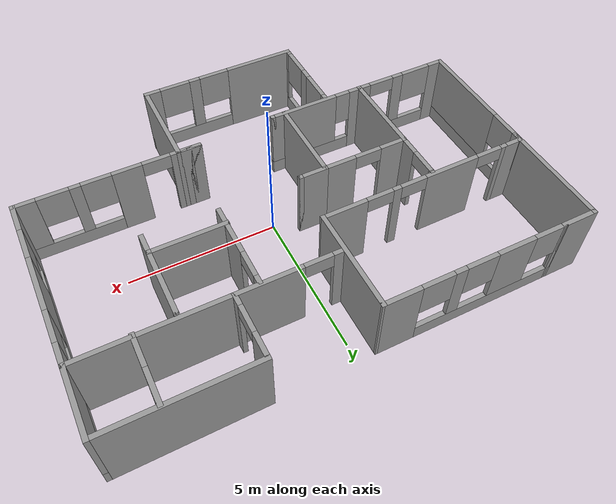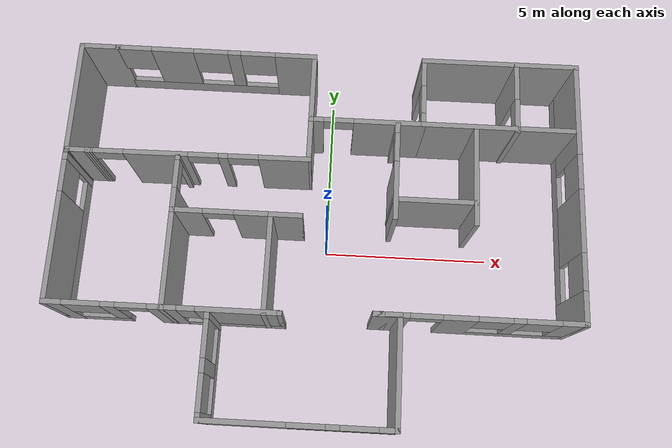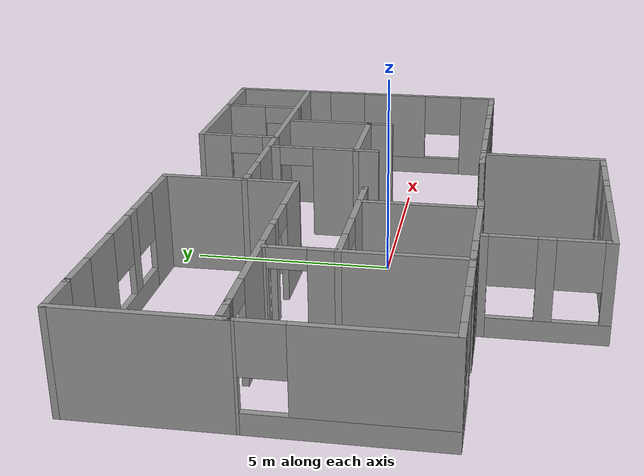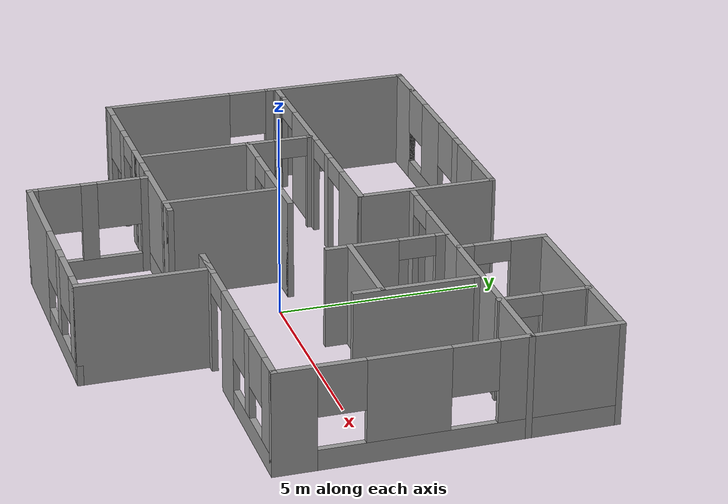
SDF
<sdf version="1.7">
 <model name="Floorplan1">
  <pose>-0.249634 0.128796 0 0 -0 0</pose>
  <link name="Wall_0">
   <collision name="Wall_0_Collision">
    <geometry><box><size>1.25 0.15 2.5</size></box></geometry>
    <pose>0 0 1.25 0 -0 0</pose>
   </collision>
   <visual name="Wall_0_Visual">
    <pose>0 0 1.25 0 -0 0</pose>
    <geometry><box><size>1.25 0.15 2.5</size></box></geometry>
    <material>
     <script><uri>file://media/materials/scripts/gazebo.material</uri><name>Gazebo/Grey</name></script>
     <ambient>1 1 1 1</ambient>
    </material>
    <meta><layer>0</layer></meta>
   </visual>
   <pose>-6.99818 5.45219 0 0 -0 3.14159</pose>
  </link>
  <link name="Wall_1">
   <collision name="Wall_1_Collision">
    <geometry><box><size>3.75 0.15 2.5</size></box></geometry>
    <pose>0 0 1.25 0 -0 0</pose>
   </collision>
   <visual name="Wall_1_Visual">
    <pose>0 0 1.25 0 -0 0</pose>
    <geometry><box><size>3.75 0.15 2.5</size></box></geometry>
    <material>
     <script><uri>file://media/materials/scripts/gazebo.material</uri><name>Gazebo/Grey</name></script>
     <ambient>1 1 1 1</ambient>
    </material>
    <meta><layer>0</layer></meta>
   </visual>
   <pose>-7.54818 3.65219 0 0 -0 -1.5708</pose>
  </link>
  <link name="Wall_10">
   <collision name="Wall_10_Collision">
    <geometry><box><size>0.15 0.15 2.5</size></box></geometry>
    <pose>0 0 1.25 0 -0 0</pose>
   </collision>
   <visual name="Wall_10_Visual">
    <pose>0 0 1.25 0 -0 0</pose>
    <geometry><box><size>0.15 0.15 2.5</size></box></geometry>
    <material>
     <script><uri>file://media/materials/scripts/gazebo.material</uri><name>Gazebo/Grey</name></script>
     <ambient>1 1 1 1</ambient>
    </material>
    <meta><layer>0</layer></meta>
   </visual>
   <pose>-6.44818 5.45219 0 0 -0 0</pose>
  </link>
  <link name="Wall_12">
   <collision name="Wall_12_Collision">
    <geometry><box><size>0.15 0.15 2.5</size></box></geometry>
    <pose>0 0 1.25 0 -0 0</pose>
   </collision>
   <visual name="Wall_12_Visual">
    <pose>0 0 1.25 0 -0 0</pose>
    <geometry><box><size>0.15 0.15 2.5</size></box></geometry>
    <material>
     <script><uri>file://media/materials/scripts/gazebo.material</uri><name>Gazebo/Grey</name></script>
     <ambient>1 1 1 1</ambient>
    </material>
    <meta><layer>0</layer></meta>
   </visual>
   <pose>-7.52398 2.04006 0 0 -0 0</pose>
  </link>
  <link name="Wall_14">
   <collision name="Wall_14_Collision">
    <geometry><box><size>0.15 0.15 2.5</size></box></geometry>
    <pose>0 0 1.25 0 -0 0</pose>
   </collision>
   <visual name="Wall_14_Visual">
    <pose>0 0 1.25 0 -0 0</pose>
    <geometry><box><size>0.15 0.15 2.5</size></box></geometry>
    <material>
     <script><uri>file://media/materials/scripts/gazebo.material</uri><name>Gazebo/Grey</name></script>
     <ambient>1 1 1 1</ambient>
    </material>
    <meta><layer>0</layer></meta>
   </visual>
   <pose>-7.52398 2.04006 0 0 -0 0</pose>
  </link>
  <link name="Wall_16">
   <collision name="Wall_16_Collision">
    <geometry><box><size>0.15 0.15 2.5</size></box></geometry>
    <pose>0 0 1.25 0 -0 0</pose>
   </collision>
   <visual name="Wall_16_Visual">
    <pose>0 0 1.25 0 -0 0</pose>
    <geometry><box><size>0.15 0.15 2.5</size></box></geometry>
    <material>
     <script><uri>file://media/materials/scripts/gazebo.material</uri><name>Gazebo/Grey</name></script>
     <ambient>1 1 1 1</ambient>
    </material>
    <meta><layer>0</layer></meta>
   </visual>
   <pose>-7.52398 2.04006 0 0 -0 0</pose>
  </link>
  <link name="Wall_18">
   <pose>-7.54818 -0.322811 0 0 -0 -1.5708</pose>
   <visual name="Wall_18_Visual_0">
    <pose>-2.14202 0 1.25 0 -0 0</pose>
    <geometry><box><size>0.215958 0.15 2.5</size></box></geometry>
    <material>
     <script><uri>file://media/materials/scripts/gazebo.material</uri><name>Gazebo/Grey</name></script>
     <ambient>1 1 1 1</ambient>
    </material>
    <meta><layer>0</layer></meta>
   </visual>
   <collision name="Wall_18_Collision_0">
    <geometry><box><size>0.215958 0.15 2.5</size></box></geometry>
    <pose>-2.14202 0 1.25 0 -0 0</pose>
   </collision>
   <visual name="Wall_18_Visual_1">
    <pose>0.107979 0 0.25 0 -0 0</pose>
    <geometry><box><size>4.28404 0.15 0.5</size></box></geometry>
    <material>
     <script><uri>file://media/materials/scripts/gazebo.material</uri><name>Gazebo/Grey</name></script>
     <ambient>1 1 1 1</ambient>
    </material>
    <meta><layer>0</layer></meta>
   </visual>
   <collision name="Wall_18_Collision_1">
    <geometry><box><size>4.28404 0.15 0.5</size></box></geometry>
    <pose>0.107979 0 0.25 0 -0 0</pose>
   </collision>
   <visual name="Wall_18_Visual_2">
    <pose>0.597695 0 1.5 0 -0 0</pose>
    <geometry><box><size>3.30461 0.15 2</size></box></geometry>
    <material>
     <script><uri>file://media/materials/scripts/gazebo.material</uri><name>Gazebo/Grey</name></script>
     <ambient>1 1 1 1</ambient>
    </material>
    <meta><layer>0</layer></meta>
   </visual>
   <collision name="Wall_18_Collision_2">
    <geometry><box><size>3.30461 0.15 2</size></box></geometry>
    <pose>0.597695 0 1.5 0 -0 0</pose>
   </collision>
   <visual name="Wall_18_Visual_3">
    <pose>-1.54433 0 1.9 0 -0 0</pose>
    <geometry><box><size>0.979431 0.15 1.2</size></box></geometry>
    <material>
     <script><uri>file://media/materials/scripts/gazebo.material</uri><name>Gazebo/Grey</name></script>
     <ambient>1 1 1 1</ambient>
    </material>
    <meta><layer>0</layer></meta>
   </visual>
   <collision name="Wall_18_Collision_3">
    <geometry><box><size>0.979431 0.15 1.2</size></box></geometry>
    <pose>-1.54433 0 1.9 0 -0 0</pose>
   </collision>
  </link>
  <link name="Wall_19">
   <pose>-4.24818 -2.49781 0 0 -0 0</pose>
   <visual name="Wall_19_Visual_0">
    <pose>-3.08087 0 1.25 0 -0 0</pose>
    <geometry><box><size>0.58825 0.15 2.5</size></box></geometry>
    <material>
     <script><uri>file://media/materials/scripts/gazebo.material</uri><name>Gazebo/Grey</name></script>
     <ambient>1 1 1 1</ambient>
    </material>
    <meta><layer>0</layer></meta>
   </visual>
   <collision name="Wall_19_Collision_0">
    <geometry><box><size>0.58825 0.15 2.5</size></box></geometry>
    <pose>-3.08087 0 1.25 0 -0 0</pose>
   </collision>
   <visual name="Wall_19_Visual_1">
    <pose>0.015384 0 1.25 0 -0 0</pose>
    <geometry><box><size>0.825338 0.15 2.5</size></box></geometry>
    <material>
     <script><uri>file://media/materials/scripts/gazebo.material</uri><name>Gazebo/Grey</name></script>
     <ambient>1 1 1 1</ambient>
    </material>
    <meta><layer>0</layer></meta>
   </visual>
   <collision name="Wall_19_Collision_1">
    <geometry><box><size>0.825338 0.15 2.5</size></box></geometry>
    <pose>0.015384 0 1.25 0 -0 0</pose>
   </collision>
   <visual name="Wall_19_Visual_2">
    <pose>-2.04202 0 0.25 0 -0 0</pose>
    <geometry><box><size>1.48947 0.15 0.5</size></box></geometry>
    <material>
     <script><uri>file://media/materials/scripts/gazebo.material</uri><name>Gazebo/Grey</name></script>
     <ambient>1 1 1 1</ambient>
    </material>
    <meta><layer>0</layer></meta>
   </visual>
   <collision name="Wall_19_Collision_2">
    <geometry><box><size>1.48947 0.15 0.5</size></box></geometry>
    <pose>-2.04202 0 0.25 0 -0 0</pose>
   </collision>
   <visual name="Wall_19_Visual_3">
    <pose>1.90153 0 0.25 0 -0 0</pose>
    <geometry><box><size>2.94695 0.15 0.5</size></box></geometry>
    <material>
     <script><uri>file://media/materials/scripts/gazebo.material</uri><name>Gazebo/Grey</name></script>
     <ambient>1 1 1 1</ambient>
    </material>
    <meta><layer>0</layer></meta>
   </visual>
   <collision name="Wall_19_Collision_3">
    <geometry><box><size>2.94695 0.15 0.5</size></box></geometry>
    <pose>1.90153 0 0.25 0 -0 0</pose>
   </collision>
   <visual name="Wall_19_Visual_4">
    <pose>-1.49997 0 1.5 0 -0 0</pose>
    <geometry><box><size>0.405366 0.15 2</size></box></geometry>
    <material>
     <script><uri>file://media/materials/scripts/gazebo.material</uri><name>Gazebo/Grey</name></script>
     <ambient>1 1 1 1</ambient>
    </material>
    <meta><layer>0</layer></meta>
   </visual>
   <collision name="Wall_19_Collision_4">
    <geometry><box><size>0.405366 0.15 2</size></box></geometry>
    <pose>-1.49997 0 1.5 0 -0 0</pose>
   </collision>
   <visual name="Wall_19_Visual_5">
    <pose>-1.49997 0 1.5 0 -0 0</pose>
    <geometry><box><size>0.405366 0.15 2</size></box></geometry>
    <material>
     <script><uri>file://media/materials/scripts/gazebo.material</uri><name>Gazebo/Grey</name></script>
     <ambient>1 1 1 1</ambient>
    </material>
    <meta><layer>0</layer></meta>
   </visual>
   <collision name="Wall_19_Collision_5">
    <geometry><box><size>0.405366 0.15 2</size></box></geometry>
    <pose>-1.49997 0 1.5 0 -0 0</pose>
   </collision>
   <visual name="Wall_19_Visual_6">
    <pose>2.15948 0 1.5 0 -0 0</pose>
    <geometry><box><size>2.43105 0.15 2</size></box></geometry>
    <material>
     <script><uri>file://media/materials/scripts/gazebo.material</uri><name>Gazebo/Grey</name></script>
     <ambient>1 1 1 1</ambient>
    </material>
    <meta><layer>0</layer></meta>
   </visual>
   <collision name="Wall_19_Collision_6">
    <geometry><box><size>2.43105 0.15 2</size></box></geometry>
    <pose>2.15948 0 1.5 0 -0 0</pose>
   </collision>
   <visual name="Wall_19_Visual_7">
    <pose>-2.2447 0 1.9 0 -0 0</pose>
    <geometry><box><size>1.0841 0.15 1.2</size></box></geometry>
    <material>
     <script><uri>file://media/materials/scripts/gazebo.material</uri><name>Gazebo/Grey</name></script>
     <ambient>1 1 1 1</ambient>
    </material>
    <meta><layer>0</layer></meta>
   </visual>
   <collision name="Wall_19_Collision_7">
    <geometry><box><size>1.0841 0.15 1.2</size></box></geometry>
    <pose>-2.2447 0 1.9 0 -0 0</pose>
   </collision>
   <visual name="Wall_19_Visual_8">
    <pose>0.686003 0 1.9 0 -0 0</pose>
    <geometry><box><size>0.515901 0.15 1.2</size></box></geometry>
    <material>
     <script><uri>file://media/materials/scripts/gazebo.material</uri><name>Gazebo/Grey</name></script>
     <ambient>1 1 1 1</ambient>
    </material>
    <meta><layer>0</layer></meta>
   </visual>
   <collision name="Wall_19_Collision_8">
    <geometry><box><size>0.515901 0.15 1.2</size></box></geometry>
    <pose>0.686003 0 1.9 0 -0 0</pose>
   </collision>
   <visual name="Wall_19_Visual_9">
    <pose>-0.847285 0 2.25 0 -0 0</pose>
    <geometry><box><size>0.9 0.15 0.5</size></box></geometry>
    <material>
     <script><uri>file://media/materials/scripts/gazebo.material</uri><name>Gazebo/Grey</name></script>
     <ambient>1 1 1 1</ambient>
    </material>
    <meta><layer>0</layer></meta>
   </visual>
   <collision name="Wall_19_Collision_9">
    <geometry><box><size>0.9 0.15 0.5</size></box></geometry>
    <pose>-0.847285 0 2.25 0 -0 0</pose>
   </collision>
   <visual name="Wall_19_Visual_10">
    <pose>-0.847285 0 2.25 0 -0 0</pose>
    <geometry><box><size>0.9 0.15 0.5</size></box></geometry>
    <material>
     <script><uri>file://media/materials/scripts/gazebo.material</uri><name>Gazebo/Grey</name></script>
     <ambient>1 1 1 1</ambient>
    </material>
    <meta><layer>0</layer></meta>
   </visual>
   <collision name="Wall_19_Collision_10">
    <geometry><box><size>0.9 0.15 0.5</size></box></geometry>
    <pose>-0.847285 0 2.25 0 -0 0</pose>
   </collision>
  </link>
  <link name="Wall_2">
   <collision name="Wall_2_Collision">
    <geometry><box><size>0.15 0.15 2.5</size></box></geometry>
    <pose>0 0 1.25 0 -0 0</pose>
   </collision>
   <visual name="Wall_2_Visual">
    <pose>0 0 1.25 0 -0 0</pose>
    <geometry><box><size>0.15 0.15 2.5</size></box></geometry>
    <material>
     <script><uri>file://media/materials/scripts/gazebo.material</uri><name>Gazebo/Grey</name></script>
     <ambient>1 1 1 1</ambient>
    </material>
    <meta><layer>0</layer></meta>
   </visual>
   <pose>-7.54818 1.85219 0 0 -0 0</pose>
  </link>
  <link name="Wall_20">
   <collision name="Wall_20_Collision">
    <geometry><box><size>0.15 0.15 2.5</size></box></geometry>
    <pose>0 0 1.25 0 -0 0</pose>
   </collision>
   <visual name="Wall_20_Visual">
    <pose>0 0 1.25 0 -0 0</pose>
    <geometry><box><size>0.15 0.15 2.5</size></box></geometry>
    <material>
     <script><uri>file://media/materials/scripts/gazebo.material</uri><name>Gazebo/Grey</name></script>
     <ambient>1 1 1 1</ambient>
    </material>
    <meta><layer>0</layer></meta>
   </visual>
   <pose>-0.948184 -2.49781 0 0 -0 0</pose>
  </link>
  <link name="Wall_22">
   <collision name="Wall_22_Collision">
    <geometry><box><size>3 0.15 2.5</size></box></geometry>
    <pose>0 0 1.25 0 -0 0</pose>
   </collision>
   <visual name="Wall_22_Visual">
    <pose>0 0 1.25 0 -0 0</pose>
    <geometry><box><size>3 0.15 2.5</size></box></geometry>
    <material>
     <script><uri>file://media/materials/scripts/gazebo.material</uri><name>Gazebo/Grey</name></script>
     <ambient>1 1 1 1</ambient>
    </material>
    <meta><layer>0</layer></meta>
   </visual>
   <pose>-1.39197 -1.07775 0 0 -0 1.5708</pose>
  </link>
  <link name="Wall_23">
   <collision name="Wall_23_Collision">
    <geometry><box><size>1 0.15 2.5</size></box></geometry>
    <pose>0 0 1.25 0 -0 0</pose>
   </collision>
   <visual name="Wall_23_Visual">
    <pose>0 0 1.25 0 -0 0</pose>
    <geometry><box><size>1 0.15 2.5</size></box></geometry>
    <material>
     <script><uri>file://media/materials/scripts/gazebo.material</uri><name>Gazebo/Grey</name></script>
     <ambient>1 1 1 1</ambient>
    </material>
    <meta><layer>0</layer></meta>
   </visual>
   <pose>-0.966966 0.347251 0 0 -0 0</pose>
  </link>
  <link name="Wall_24">
   <collision name="Wall_24_Collision">
    <geometry><box><size>0.15 0.15 2.5</size></box></geometry>
    <pose>0 0 1.25 0 -0 0</pose>
   </collision>
   <visual name="Wall_24_Visual">
    <pose>0 0 1.25 0 -0 0</pose>
    <geometry><box><size>0.15 0.15 2.5</size></box></geometry>
    <material>
     <script><uri>file://media/materials/scripts/gazebo.material</uri><name>Gazebo/Grey</name></script>
     <ambient>1 1 1 1</ambient>
    </material>
    <meta><layer>0</layer></meta>
   </visual>
   <pose>-0.541966 0.347251 0 0 -0 0</pose>
  </link>
  <link name="Wall_26">
   <pose>-2.81697 0.347251 0 0 -0 3.14159</pose>
   <visual name="Wall_26_Visual_0">
    <pose>-0.92766 0 1.25 0 -0 0</pose>
    <geometry><box><size>1.14468 0.15 2.5</size></box></geometry>
    <material>
     <script><uri>file://media/materials/scripts/gazebo.material</uri><name>Gazebo/Grey</name></script>
     <ambient>1 1 1 1</ambient>
    </material>
    <meta><layer>0</layer></meta>
   </visual>
   <collision name="Wall_26_Collision_0">
    <geometry><box><size>1.14468 0.15 2.5</size></box></geometry>
    <pose>-0.92766 0 1.25 0 -0 0</pose>
   </collision>
   <visual name="Wall_26_Visual_1">
    <pose>1.02234 0 1.25 0 -0 0</pose>
    <geometry><box><size>0.95532 0.15 2.5</size></box></geometry>
    <material>
     <script><uri>file://media/materials/scripts/gazebo.material</uri><name>Gazebo/Grey</name></script>
     <ambient>1 1 1 1</ambient>
    </material>
    <meta><layer>0</layer></meta>
   </visual>
   <collision name="Wall_26_Collision_1">
    <geometry><box><size>0.95532 0.15 2.5</size></box></geometry>
    <pose>1.02234 0 1.25 0 -0 0</pose>
   </collision>
   <visual name="Wall_26_Visual_2">
    <pose>0.09468 0 2.25 0 -0 0</pose>
    <geometry><box><size>0.9 0.15 0.5</size></box></geometry>
    <material>
     <script><uri>file://media/materials/scripts/gazebo.material</uri><name>Gazebo/Grey</name></script>
     <ambient>1 1 1 1</ambient>
    </material>
    <meta><layer>0</layer></meta>
   </visual>
   <collision name="Wall_26_Collision_2">
    <geometry><box><size>0.9 0.15 0.5</size></box></geometry>
    <pose>0.09468 0 2.25 0 -0 0</pose>
   </collision>
  </link>
  <link name="Wall_27">
   <collision name="Wall_27_Collision">
    <geometry><box><size>3 0.15 2.5</size></box></geometry>
    <pose>0 0 1.25 0 -0 0</pose>
   </collision>
   <visual name="Wall_27_Visual">
    <pose>0 0 1.25 0 -0 0</pose>
    <geometry><box><size>3 0.15 2.5</size></box></geometry>
    <material>
     <script><uri>file://media/materials/scripts/gazebo.material</uri><name>Gazebo/Grey</name></script>
     <ambient>1 1 1 1</ambient>
    </material>
    <meta><layer>0</layer></meta>
   </visual>
   <pose>-4.24197 -1.07775 0 0 -0 -1.5708</pose>
  </link>
  <link name="Wall_28">
   <collision name="Wall_28_Collision">
    <geometry><box><size>0.15 0.15 2.5</size></box></geometry>
    <pose>0 0 1.25 0 -0 0</pose>
   </collision>
   <visual name="Wall_28_Visual">
    <pose>0 0 1.25 0 -0 0</pose>
    <geometry><box><size>0.15 0.15 2.5</size></box></geometry>
    <material>
     <script><uri>file://media/materials/scripts/gazebo.material</uri><name>Gazebo/Grey</name></script>
     <ambient>1 1 1 1</ambient>
    </material>
    <meta><layer>0</layer></meta>
   </visual>
   <pose>-4.24197 -2.50275 0 0 -0 0</pose>
  </link>
  <link name="Wall_3">
   <collision name="Wall_3_Collision">
    <geometry><box><size>0.15 0.15 2.5</size></box></geometry>
    <pose>0 0 1.25 0 -0 0</pose>
   </collision>
   <visual name="Wall_3_Visual">
    <pose>0 0 1.25 0 -0 0</pose>
    <geometry><box><size>0.15 0.15 2.5</size></box></geometry>
    <material>
     <script><uri>file://media/materials/scripts/gazebo.material</uri><name>Gazebo/Grey</name></script>
     <ambient>1 1 1 1</ambient>
    </material>
    <meta><layer>0</layer></meta>
   </visual>
   <pose>-7.54818 1.85219 0 0 -0 0</pose>
  </link>
  <link name="Wall_30">
   <pose>-4.24197 1.14725 0 0 -0 1.5708</pose>
   <visual name="Wall_30_Visual_0">
    <pose>-0.503537 0 1.25 0 -0 0</pose>
    <geometry><box><size>0.742926 0.15 2.5</size></box></geometry>
    <material>
     <script><uri>file://media/materials/scripts/gazebo.material</uri><name>Gazebo/Grey</name></script>
     <ambient>1 1 1 1</ambient>
    </material>
    <meta><layer>0</layer></meta>
   </visual>
   <collision name="Wall_30_Collision_0">
    <geometry><box><size>0.742926 0.15 2.5</size></box></geometry>
    <pose>-0.503537 0 1.25 0 -0 0</pose>
   </collision>
   <visual name="Wall_30_Visual_1">
    <pose>0.821463 0 1.25 0 -0 0</pose>
    <geometry><box><size>0.107074 0.15 2.5</size></box></geometry>
    <material>
     <script><uri>file://media/materials/scripts/gazebo.material</uri><name>Gazebo/Grey</name></script>
     <ambient>1 1 1 1</ambient>
    </material>
    <meta><layer>0</layer></meta>
   </visual>
   <collision name="Wall_30_Collision_1">
    <geometry><box><size>0.107074 0.15 2.5</size></box></geometry>
    <pose>0.821463 0 1.25 0 -0 0</pose>
   </collision>
   <visual name="Wall_30_Visual_2">
    <pose>0.317926 0 2.25 0 -0 0</pose>
    <geometry><box><size>0.9 0.15 0.5</size></box></geometry>
    <material>
     <script><uri>file://media/materials/scripts/gazebo.material</uri><name>Gazebo/Grey</name></script>
     <ambient>1 1 1 1</ambient>
    </material>
    <meta><layer>0</layer></meta>
   </visual>
   <collision name="Wall_30_Collision_2">
    <geometry><box><size>0.9 0.15 0.5</size></box></geometry>
    <pose>0.317926 0 2.25 0 -0 0</pose>
   </collision>
  </link>
  <link name="Wall_31">
   <collision name="Wall_31_Collision">
    <geometry><box><size>0.15 0.15 2.5</size></box></geometry>
    <pose>0 0 1.25 0 -0 0</pose>
   </collision>
   <visual name="Wall_31_Visual">
    <pose>0 0 1.25 0 -0 0</pose>
    <geometry><box><size>0.15 0.15 2.5</size></box></geometry>
    <material>
     <script><uri>file://media/materials/scripts/gazebo.material</uri><name>Gazebo/Grey</name></script>
     <ambient>1 1 1 1</ambient>
    </material>
    <meta><layer>0</layer></meta>
   </visual>
   <pose>-4.24197 1.94725 0 0 -0 0</pose>
  </link>
  <link name="Wall_33">
   <pose>-2.95182 -4.05 0 0 -0 -1.5708</pose>
   <visual name="Wall_33_Visual_0">
    <pose>-1.39729 0 1.25 0 -0 0</pose>
    <geometry><box><size>0.205423 0.15 2.5</size></box></geometry>
    <material>
     <script><uri>file://media/materials/scripts/gazebo.material</uri><name>Gazebo/Grey</name></script>
     <ambient>1 1 1 1</ambient>
    </material>
    <meta><layer>0</layer></meta>
   </visual>
   <collision name="Wall_33_Collision_0">
    <geometry><box><size>0.205423 0.15 2.5</size></box></geometry>
    <pose>-1.39729 0 1.25 0 -0 0</pose>
   </collision>
   <visual name="Wall_33_Visual_1">
    <pose>0.102712 0 0.25 0 -0 0</pose>
    <geometry><box><size>2.79458 0.15 0.5</size></box></geometry>
    <material>
     <script><uri>file://media/materials/scripts/gazebo.material</uri><name>Gazebo/Grey</name></script>
     <ambient>1 1 1 1</ambient>
    </material>
    <meta><layer>0</layer></meta>
   </visual>
   <collision name="Wall_33_Collision_1">
    <geometry><box><size>2.79458 0.15 0.5</size></box></geometry>
    <pose>0.102712 0 0.25 0 -0 0</pose>
   </collision>
   <visual name="Wall_33_Visual_2">
    <pose>-0.017608 0 1.5 0 -0 0</pose>
    <geometry><box><size>0.403682 0.15 2</size></box></geometry>
    <material>
     <script><uri>file://media/materials/scripts/gazebo.material</uri><name>Gazebo/Grey</name></script>
     <ambient>1 1 1 1</ambient>
    </material>
    <meta><layer>0</layer></meta>
   </visual>
   <collision name="Wall_33_Collision_2">
    <geometry><box><size>0.403682 0.15 2</size></box></geometry>
    <pose>-0.017608 0 1.5 0 -0 0</pose>
   </collision>
   <visual name="Wall_33_Visual_3">
    <pose>1.36248 0 1.5 0 -0 0</pose>
    <geometry><box><size>0.275031 0.15 2</size></box></geometry>
    <material>
     <script><uri>file://media/materials/scripts/gazebo.material</uri><name>Gazebo/Grey</name></script>
     <ambient>1 1 1 1</ambient>
    </material>
    <meta><layer>0</layer></meta>
   </visual>
   <collision name="Wall_33_Collision_3">
    <geometry><box><size>0.275031 0.15 2</size></box></geometry>
    <pose>1.36248 0 1.5 0 -0 0</pose>
   </collision>
   <visual name="Wall_33_Visual_4">
    <pose>-0.757013 0 1.9 0 -0 0</pose>
    <geometry><box><size>1.07513 0.15 1.2</size></box></geometry>
    <material>
     <script><uri>file://media/materials/scripts/gazebo.material</uri><name>Gazebo/Grey</name></script>
     <ambient>1 1 1 1</ambient>
    </material>
    <meta><layer>0</layer></meta>
   </visual>
   <collision name="Wall_33_Collision_4">
    <geometry><box><size>1.07513 0.15 1.2</size></box></geometry>
    <pose>-0.757013 0 1.9 0 -0 0</pose>
   </collision>
   <visual name="Wall_33_Visual_5">
    <pose>0.704601 0 1.9 0 -0 0</pose>
    <geometry><box><size>1.04074 0.15 1.2</size></box></geometry>
    <material>
     <script><uri>file://media/materials/scripts/gazebo.material</uri><name>Gazebo/Grey</name></script>
     <ambient>1 1 1 1</ambient>
    </material>
    <meta><layer>0</layer></meta>
   </visual>
   <collision name="Wall_33_Collision_5">
    <geometry><box><size>1.04074 0.15 1.2</size></box></geometry>
    <pose>0.704601 0 1.9 0 -0 0</pose>
   </collision>
  </link>
  <link name="Wall_34">
   <pose>-0.276816 -5.475 0 0 -0 0</pose>
   <visual name="Wall_34_Visual_0">
    <pose>-1.52521 0 1.25 0 -0 0</pose>
    <geometry><box><size>2.44957 0.15 2.5</size></box></geometry>
    <material>
     <script><uri>file://media/materials/scripts/gazebo.material</uri><name>Gazebo/Grey</name></script>
     <ambient>1 1 1 1</ambient>
    </material>
    <meta><layer>0</layer></meta>
   </visual>
   <collision name="Wall_34_Collision_0">
    <geometry><box><size>2.44957 0.15 2.5</size></box></geometry>
    <pose>-1.52521 0 1.25 0 -0 0</pose>
   </collision>
   <visual name="Wall_34_Visual_1">
    <pose>1.22479 0 0.25 0 -0 0</pose>
    <geometry><box><size>3.05043 0.15 0.5</size></box></geometry>
    <material>
     <script><uri>file://media/materials/scripts/gazebo.material</uri><name>Gazebo/Grey</name></script>
     <ambient>1 1 1 1</ambient>
    </material>
    <meta><layer>0</layer></meta>
   </visual>
   <collision name="Wall_34_Collision_1">
    <geometry><box><size>3.05043 0.15 0.5</size></box></geometry>
    <pose>1.22479 0 0.25 0 -0 0</pose>
   </collision>
   <visual name="Wall_34_Visual_2">
    <pose>0.940989 0 1.5 0 -0 0</pose>
    <geometry><box><size>0.382532 0.15 2</size></box></geometry>
    <material>
     <script><uri>file://media/materials/scripts/gazebo.material</uri><name>Gazebo/Grey</name></script>
     <ambient>1 1 1 1</ambient>
    </material>
    <meta><layer>0</layer></meta>
   </visual>
   <collision name="Wall_34_Collision_2">
    <geometry><box><size>0.382532 0.15 2</size></box></geometry>
    <pose>0.940989 0 1.5 0 -0 0</pose>
   </collision>
   <visual name="Wall_34_Visual_3">
    <pose>2.4662 0 1.5 0 -0 0</pose>
    <geometry><box><size>0.567595 0.15 2</size></box></geometry>
    <material>
     <script><uri>file://media/materials/scripts/gazebo.material</uri><name>Gazebo/Grey</name></script>
     <ambient>1 1 1 1</ambient>
    </material>
    <meta><layer>0</layer></meta>
   </visual>
   <collision name="Wall_34_Collision_3">
    <geometry><box><size>0.567595 0.15 2</size></box></geometry>
    <pose>2.4662 0 1.5 0 -0 0</pose>
   </collision>
   <visual name="Wall_34_Visual_4">
    <pose>0.224647 0 1.9 0 -0 0</pose>
    <geometry><box><size>1.05015 0.15 1.2</size></box></geometry>
    <material>
     <script><uri>file://media/materials/scripts/gazebo.material</uri><name>Gazebo/Grey</name></script>
     <ambient>1 1 1 1</ambient>
    </material>
    <meta><layer>0</layer></meta>
   </visual>
   <collision name="Wall_34_Collision_4">
    <geometry><box><size>1.05015 0.15 1.2</size></box></geometry>
    <pose>0.224647 0 1.9 0 -0 0</pose>
   </collision>
   <visual name="Wall_34_Visual_5">
    <pose>1.65733 0 1.9 0 -0 0</pose>
    <geometry><box><size>1.05015 0.15 1.2</size></box></geometry>
    <material>
     <script><uri>file://media/materials/scripts/gazebo.material</uri><name>Gazebo/Grey</name></script>
     <ambient>1 1 1 1</ambient>
    </material>
    <meta><layer>0</layer></meta>
   </visual>
   <collision name="Wall_34_Collision_5">
    <geometry><box><size>1.05015 0.15 1.2</size></box></geometry>
    <pose>1.65733 0 1.9 0 -0 0</pose>
   </collision>
  </link>
  <link name="Wall_35">
   <collision name="Wall_35_Collision">
    <geometry><box><size>3.25 0.15 2.5</size></box></geometry>
    <pose>0 0 1.25 0 -0 0</pose>
   </collision>
   <visual name="Wall_35_Visual">
    <pose>0 0 1.25 0 -0 0</pose>
    <geometry><box><size>3.25 0.15 2.5</size></box></geometry>
    <material>
     <script><uri>file://media/materials/scripts/gazebo.material</uri><name>Gazebo/Grey</name></script>
     <ambient>1 1 1 1</ambient>
    </material>
    <meta><layer>0</layer></meta>
   </visual>
   <pose>2.39818 -3.925 0 0 -0 1.5708</pose>
  </link>
  <link name="Wall_36">
   <collision name="Wall_36_Collision">
    <geometry><box><size>0.5 0.15 2.5</size></box></geometry>
    <pose>0 0 1.25 0 -0 0</pose>
   </collision>
   <visual name="Wall_36_Visual">
    <pose>0 0 1.25 0 -0 0</pose>
    <geometry><box><size>0.5 0.15 2.5</size></box></geometry>
    <material>
     <script><uri>file://media/materials/scripts/gazebo.material</uri><name>Gazebo/Grey</name></script>
     <ambient>1 1 1 1</ambient>
    </material>
    <meta><layer>0</layer></meta>
   </visual>
   <pose>2.22318 -2.375 0 0 -0 3.14159</pose>
  </link>
  <link name="Wall_37">
   <collision name="Wall_37_Collision">
    <geometry><box><size>0.5 0.15 2.5</size></box></geometry>
    <pose>0 0 1.25 0 -0 0</pose>
   </collision>
   <visual name="Wall_37_Visual">
    <pose>0 0 1.25 0 -0 0</pose>
    <geometry><box><size>0.5 0.15 2.5</size></box></geometry>
    <material>
     <script><uri>file://media/materials/scripts/gazebo.material</uri><name>Gazebo/Grey</name></script>
     <ambient>1 1 1 1</ambient>
    </material>
    <meta><layer>0</layer></meta>
   </visual>
   <pose>1.87318 -2.375 0 0 -0 3.14159</pose>
  </link>
  <link name="Wall_38">
   <pose>4.62318 -2.375 0 0 -0 0</pose>
   <visual name="Wall_38_Visual_0">
    <pose>-2.47571 0 1.25 0 -0 0</pose>
    <geometry><box><size>1.04858 0.15 2.5</size></box></geometry>
    <material>
     <script><uri>file://media/materials/scripts/gazebo.material</uri><name>Gazebo/Grey</name></script>
     <ambient>1 1 1 1</ambient>
    </material>
    <meta><layer>0</layer></meta>
   </visual>
   <collision name="Wall_38_Collision_0">
    <geometry><box><size>1.04858 0.15 2.5</size></box></geometry>
    <pose>-2.47571 0 1.25 0 -0 0</pose>
   </collision>
   <visual name="Wall_38_Visual_1">
    <pose>-0.543594 0 1.25 0 -0 0</pose>
    <geometry><box><size>0.970431 0.15 2.5</size></box></geometry>
    <material>
     <script><uri>file://media/materials/scripts/gazebo.material</uri><name>Gazebo/Grey</name></script>
     <ambient>1 1 1 1</ambient>
    </material>
    <meta><layer>0</layer></meta>
   </visual>
   <collision name="Wall_38_Collision_1">
    <geometry><box><size>0.970431 0.15 2.5</size></box></geometry>
    <pose>-0.543594 0 1.25 0 -0 0</pose>
   </collision>
   <visual name="Wall_38_Visual_2">
    <pose>1.47081 0 0.25 0 -0 0</pose>
    <geometry><box><size>3.05838 0.15 0.5</size></box></geometry>
    <material>
     <script><uri>file://media/materials/scripts/gazebo.material</uri><name>Gazebo/Grey</name></script>
     <ambient>1 1 1 1</ambient>
    </material>
    <meta><layer>0</layer></meta>
   </visual>
   <collision name="Wall_38_Collision_2">
    <geometry><box><size>3.05838 0.15 0.5</size></box></geometry>
    <pose>1.47081 0 0.25 0 -0 0</pose>
   </collision>
   <visual name="Wall_38_Visual_3">
    <pose>1.07818 0 1.5 0 -0 0</pose>
    <geometry><box><size>0.356731 0.15 2</size></box></geometry>
    <material>
     <script><uri>file://media/materials/scripts/gazebo.material</uri><name>Gazebo/Grey</name></script>
     <ambient>1 1 1 1</ambient>
    </material>
    <meta><layer>0</layer></meta>
   </visual>
   <collision name="Wall_38_Collision_3">
    <geometry><box><size>0.356731 0.15 2</size></box></geometry>
    <pose>1.07818 0 1.5 0 -0 0</pose>
   </collision>
   <visual name="Wall_38_Visual_4">
    <pose>2.62715 0 1.5 0 -0 0</pose>
    <geometry><box><size>0.745701 0.15 2</size></box></geometry>
    <material>
     <script><uri>file://media/materials/scripts/gazebo.material</uri><name>Gazebo/Grey</name></script>
     <ambient>1 1 1 1</ambient>
    </material>
    <meta><layer>0</layer></meta>
   </visual>
   <collision name="Wall_38_Collision_4">
    <geometry><box><size>0.745701 0.15 2</size></box></geometry>
    <pose>2.62715 0 1.5 0 -0 0</pose>
   </collision>
   <visual name="Wall_38_Visual_5">
    <pose>0.420721 0 1.9 0 -0 0</pose>
    <geometry><box><size>0.958198 0.15 1.2</size></box></geometry>
    <material>
     <script><uri>file://media/materials/scripts/gazebo.material</uri><name>Gazebo/Grey</name></script>
     <ambient>1 1 1 1</ambient>
    </material>
    <meta><layer>0</layer></meta>
   </visual>
   <collision name="Wall_38_Collision_5">
    <geometry><box><size>0.958198 0.15 1.2</size></box></geometry>
    <pose>0.420721 0 1.9 0 -0 0</pose>
   </collision>
   <visual name="Wall_38_Visual_6">
    <pose>1.75543 0 1.9 0 -0 0</pose>
    <geometry><box><size>0.997748 0.15 1.2</size></box></geometry>
    <material>
     <script><uri>file://media/materials/scripts/gazebo.material</uri><name>Gazebo/Grey</name></script>
     <ambient>1 1 1 1</ambient>
    </material>
    <meta><layer>0</layer></meta>
   </visual>
   <collision name="Wall_38_Collision_6">
    <geometry><box><size>0.997748 0.15 1.2</size></box></geometry>
    <pose>1.75543 0 1.9 0 -0 0</pose>
   </collision>
   <visual name="Wall_38_Visual_7">
    <pose>-1.49012 0 2.25 0 -0 0</pose>
    <geometry><box><size>0.922613 0.15 0.5</size></box></geometry>
    <material>
     <script><uri>file://media/materials/scripts/gazebo.material</uri><name>Gazebo/Grey</name></script>
     <ambient>1 1 1 1</ambient>
    </material>
    <meta><layer>0</layer></meta>
   </visual>
   <collision name="Wall_38_Collision_7">
    <geometry><box><size>0.922613 0.15 0.5</size></box></geometry>
    <pose>-1.49012 0 2.25 0 -0 0</pose>
   </collision>
  </link>
  <link name="Wall_39">
   <pose>7.54818 1.55 0 0 -0 1.5708</pose>
   <visual name="Wall_39_Visual_0">
    <pose>-3.48861 0 1.25 0 -0 0</pose>
    <geometry><box><size>1.02278 0.15 2.5</size></box></geometry>
    <material>
     <script><uri>file://media/materials/scripts/gazebo.material</uri><name>Gazebo/Grey</name></script>
     <ambient>1 1 1 1</ambient>
    </material>
    <meta><layer>0</layer></meta>
   </visual>
   <collision name="Wall_39_Collision_0">
    <geometry><box><size>1.02278 0.15 2.5</size></box></geometry>
    <pose>-3.48861 0 1.25 0 -0 0</pose>
   </collision>
   <visual name="Wall_39_Visual_1">
    <pose>0.511388 0 0.25 0 -0 0</pose>
    <geometry><box><size>6.97722 0.15 0.5</size></box></geometry>
    <material>
     <script><uri>file://media/materials/scripts/gazebo.material</uri><name>Gazebo/Grey</name></script>
     <ambient>1 1 1 1</ambient>
    </material>
    <meta><layer>0</layer></meta>
   </visual>
   <collision name="Wall_39_Collision_1">
    <geometry><box><size>6.97722 0.15 0.5</size></box></geometry>
    <pose>0.511388 0 0.25 0 -0 0</pose>
   </collision>
   <visual name="Wall_39_Visual_2">
    <pose>-0.926029 0 1.5 0 -0 0</pose>
    <geometry><box><size>1.90914 0.15 2</size></box></geometry>
    <material>
     <script><uri>file://media/materials/scripts/gazebo.material</uri><name>Gazebo/Grey</name></script>
     <ambient>1 1 1 1</ambient>
    </material>
    <meta><layer>0</layer></meta>
   </visual>
   <collision name="Wall_39_Collision_2">
    <geometry><box><size>1.90914 0.15 2</size></box></geometry>
    <pose>-0.926029 0 1.5 0 -0 0</pose>
   </collision>
   <visual name="Wall_39_Visual_3">
    <pose>2.55269 0 1.5 0 -0 0</pose>
    <geometry><box><size>2.89461 0.15 2</size></box></geometry>
    <material>
     <script><uri>file://media/materials/scripts/gazebo.material</uri><name>Gazebo/Grey</name></script>
     <ambient>1 1 1 1</ambient>
    </material>
    <meta><layer>0</layer></meta>
   </visual>
   <collision name="Wall_39_Collision_3">
    <geometry><box><size>2.89461 0.15 2</size></box></geometry>
    <pose>2.55269 0 1.5 0 -0 0</pose>
   </collision>
   <visual name="Wall_39_Visual_4">
    <pose>-2.42891 0 1.9 0 -0 0</pose>
    <geometry><box><size>1.09662 0.15 1.2</size></box></geometry>
    <material>
     <script><uri>file://media/materials/scripts/gazebo.material</uri><name>Gazebo/Grey</name></script>
     <ambient>1 1 1 1</ambient>
    </material>
    <meta><layer>0</layer></meta>
   </visual>
   <collision name="Wall_39_Collision_4">
    <geometry><box><size>1.09662 0.15 1.2</size></box></geometry>
    <pose>-2.42891 0 1.9 0 -0 0</pose>
   </collision>
   <visual name="Wall_39_Visual_5">
    <pose>0.566966 0 1.9 0 -0 0</pose>
    <geometry><box><size>1.07685 0.15 1.2</size></box></geometry>
    <material>
     <script><uri>file://media/materials/scripts/gazebo.material</uri><name>Gazebo/Grey</name></script>
     <ambient>1 1 1 1</ambient>
    </material>
    <meta><layer>0</layer></meta>
   </visual>
   <collision name="Wall_39_Collision_5">
    <geometry><box><size>1.07685 0.15 1.2</size></box></geometry>
    <pose>0.566966 0 1.9 0 -0 0</pose>
   </collision>
  </link>
  <link name="Wall_40">
   <collision name="Wall_40_Collision">
    <geometry><box><size>4.75 0.15 2.5</size></box></geometry>
    <pose>0 0 1.25 0 -0 0</pose>
   </collision>
   <visual name="Wall_40_Visual">
    <pose>0 0 1.25 0 -0 0</pose>
    <geometry><box><size>4.75 0.15 2.5</size></box></geometry>
    <material>
     <script><uri>file://media/materials/scripts/gazebo.material</uri><name>Gazebo/Grey</name></script>
     <ambient>1 1 1 1</ambient>
    </material>
    <meta><layer>0</layer></meta>
   </visual>
   <pose>5.24818 5.475 0 0 -0 3.14159</pose>
  </link>
  <link name="Wall_41">
   <pose>2.94818 4.425 0 0 -0 -1.5708</pose>
   <visual name="Wall_41_Visual_0">
    <pose>-0.66941 0 1.25 0 -0 0</pose>
    <geometry><box><size>0.911179 0.15 2.5</size></box></geometry>
    <material>
     <script><uri>file://media/materials/scripts/gazebo.material</uri><name>Gazebo/Grey</name></script>
     <ambient>1 1 1 1</ambient>
    </material>
    <meta><layer>0</layer></meta>
   </visual>
   <collision name="Wall_41_Collision_0">
    <geometry><box><size>0.911179 0.15 2.5</size></box></geometry>
    <pose>-0.66941 0 1.25 0 -0 0</pose>
   </collision>
   <visual name="Wall_41_Visual_1">
    <pose>0.90559 0 1.25 0 -0 0</pose>
    <geometry><box><size>0.438821 0.15 2.5</size></box></geometry>
    <material>
     <script><uri>file://media/materials/scripts/gazebo.material</uri><name>Gazebo/Grey</name></script>
     <ambient>1 1 1 1</ambient>
    </material>
    <meta><layer>0</layer></meta>
   </visual>
   <collision name="Wall_41_Collision_1">
    <geometry><box><size>0.438821 0.15 2.5</size></box></geometry>
    <pose>0.90559 0 1.25 0 -0 0</pose>
   </collision>
   <visual name="Wall_41_Visual_2">
    <pose>0.236179 0 2.25 0 -0 0</pose>
    <geometry><box><size>0.9 0.15 0.5</size></box></geometry>
    <material>
     <script><uri>file://media/materials/scripts/gazebo.material</uri><name>Gazebo/Grey</name></script>
     <ambient>1 1 1 1</ambient>
    </material>
    <meta><layer>0</layer></meta>
   </visual>
   <collision name="Wall_41_Collision_2">
    <geometry><box><size>0.9 0.15 0.5</size></box></geometry>
    <pose>0.236179 0 2.25 0 -0 0</pose>
   </collision>
  </link>
  <link name="Wall_42">
   <pose>1.27318 3.375 0 0 -0 3.14159</pose>
   <visual name="Wall_42_Visual_0">
    <pose>-0.677479 0 1.25 0 -0 0</pose>
    <geometry><box><size>2.14504 0.15 2.5</size></box></geometry>
    <material>
     <script><uri>file://media/materials/scripts/gazebo.material</uri><name>Gazebo/Grey</name></script>
     <ambient>1 1 1 1</ambient>
    </material>
    <meta><layer>0</layer></meta>
   </visual>
   <collision name="Wall_42_Collision_0">
    <geometry><box><size>2.14504 0.15 2.5</size></box></geometry>
    <pose>-0.677479 0 1.25 0 -0 0</pose>
   </collision>
   <visual name="Wall_42_Visual_1">
    <pose>1.52252 0 1.25 0 -0 0</pose>
    <geometry><box><size>0.454957 0.15 2.5</size></box></geometry>
    <material>
     <script><uri>file://media/materials/scripts/gazebo.material</uri><name>Gazebo/Grey</name></script>
     <ambient>1 1 1 1</ambient>
    </material>
    <meta><layer>0</layer></meta>
   </visual>
   <collision name="Wall_42_Collision_1">
    <geometry><box><size>0.454957 0.15 2.5</size></box></geometry>
    <pose>1.52252 0 1.25 0 -0 0</pose>
   </collision>
   <visual name="Wall_42_Visual_2">
    <pose>0.845043 0 2.25 0 -0 0</pose>
    <geometry><box><size>0.9 0.15 0.5</size></box></geometry>
    <material>
     <script><uri>file://media/materials/scripts/gazebo.material</uri><name>Gazebo/Grey</name></script>
     <ambient>1 1 1 1</ambient>
    </material>
    <meta><layer>0</layer></meta>
   </visual>
   <collision name="Wall_42_Collision_2">
    <geometry><box><size>0.9 0.15 0.5</size></box></geometry>
    <pose>0.845043 0 2.25 0 -0 0</pose>
   </collision>
  </link>
  <link name="Wall_43">
   <collision name="Wall_43_Collision">
    <geometry><box><size>0.15 0.15 2.5</size></box></geometry>
    <pose>0 0 1.25 0 -0 0</pose>
   </collision>
   <visual name="Wall_43_Visual">
    <pose>0 0 1.25 0 -0 0</pose>
    <geometry><box><size>0.15 0.15 2.5</size></box></geometry>
    <material>
     <script><uri>file://media/materials/scripts/gazebo.material</uri><name>Gazebo/Grey</name></script>
     <ambient>1 1 1 1</ambient>
    </material>
    <meta><layer>0</layer></meta>
   </visual>
   <pose>-0.401816 3.375 0 0 -0 0</pose>
  </link>
  <link name="Wall_45">
   <collision name="Wall_45_Collision">
    <geometry><box><size>4.75 0.15 2.5</size></box></geometry>
    <pose>0 0 1.25 0 -0 0</pose>
   </collision>
   <visual name="Wall_45_Visual">
    <pose>0 0 1.25 0 -0 0</pose>
    <geometry><box><size>4.75 0.15 2.5</size></box></geometry>
    <material>
     <script><uri>file://media/materials/scripts/gazebo.material</uri><name>Gazebo/Grey</name></script>
     <ambient>1 1 1 1</ambient>
    </material>
    <meta><layer>0</layer></meta>
   </visual>
   <pose>5.24818 3.375 0 0 -0 0</pose>
  </link>
  <link name="Wall_46">
   <collision name="Wall_46_Collision">
    <geometry><box><size>0.15 0.15 2.5</size></box></geometry>
    <pose>0 0 1.25 0 -0 0</pose>
   </collision>
   <visual name="Wall_46_Visual">
    <pose>0 0 1.25 0 -0 0</pose>
    <geometry><box><size>0.15 0.15 2.5</size></box></geometry>
    <material>
     <script><uri>file://media/materials/scripts/gazebo.material</uri><name>Gazebo/Grey</name></script>
     <ambient>1 1 1 1</ambient>
    </material>
    <meta><layer>0</layer></meta>
   </visual>
   <pose>7.54818 3.375 0 0 -0 0</pose>
  </link>
  <link name="Wall_48">
   <pose>5.74929 4.38035 0 0 -0 1.5708</pose>
   <visual name="Wall_48_Visual_0">
    <pose>-1.03715 0 1.25 0 -0 0</pose>
    <geometry><box><size>0.1757 0.15 2.5</size></box></geometry>
    <material>
     <script><uri>file://media/materials/scripts/gazebo.material</uri><name>Gazebo/Grey</name></script>
     <ambient>1 1 1 1</ambient>
    </material>
    <meta><layer>0</layer></meta>
   </visual>
   <collision name="Wall_48_Collision_0">
    <geometry><box><size>0.1757 0.15 2.5</size></box></geometry>
    <pose>-1.03715 0 1.25 0 -0 0</pose>
   </collision>
   <visual name="Wall_48_Visual_1">
    <pose>0.53785 0 1.25 0 -0 0</pose>
    <geometry><box><size>1.1743 0.15 2.5</size></box></geometry>
    <material>
     <script><uri>file://media/materials/scripts/gazebo.material</uri><name>Gazebo/Grey</name></script>
     <ambient>1 1 1 1</ambient>
    </material>
    <meta><layer>0</layer></meta>
   </visual>
   <collision name="Wall_48_Collision_1">
    <geometry><box><size>1.1743 0.15 2.5</size></box></geometry>
    <pose>0.53785 0 1.25 0 -0 0</pose>
   </collision>
   <visual name="Wall_48_Visual_2">
    <pose>-0.4993 0 2.25 0 -0 0</pose>
    <geometry><box><size>0.9 0.15 0.5</size></box></geometry>
    <material>
     <script><uri>file://media/materials/scripts/gazebo.material</uri><name>Gazebo/Grey</name></script>
     <ambient>1 1 1 1</ambient>
    </material>
    <meta><layer>0</layer></meta>
   </visual>
   <collision name="Wall_48_Collision_2">
    <geometry><box><size>0.9 0.15 0.5</size></box></geometry>
    <pose>-0.4993 0 2.25 0 -0 0</pose>
   </collision>
  </link>
  <link name="Wall_49">
   <collision name="Wall_49_Collision">
    <geometry><box><size>0.15 0.15 2.5</size></box></geometry>
    <pose>0 0 1.25 0 -0 0</pose>
   </collision>
   <visual name="Wall_49_Visual">
    <pose>0 0 1.25 0 -0 0</pose>
    <geometry><box><size>0.15 0.15 2.5</size></box></geometry>
    <material>
     <script><uri>file://media/materials/scripts/gazebo.material</uri><name>Gazebo/Grey</name></script>
     <ambient>1 1 1 1</ambient>
    </material>
    <meta><layer>0</layer></meta>
   </visual>
   <pose>5.74929 5.43035 0 0 -0 0</pose>
  </link>
  <link name="Wall_5">
   <collision name="Wall_5_Collision">
    <geometry><box><size>0.75 0.15 2.5</size></box></geometry>
    <pose>0 0 1.25 0 -0 0</pose>
   </collision>
   <visual name="Wall_5_Visual">
    <pose>0 0 1.25 0 -0 0</pose>
    <geometry><box><size>0.75 0.15 2.5</size></box></geometry>
    <material>
     <script><uri>file://media/materials/scripts/gazebo.material</uri><name>Gazebo/Grey</name></script>
     <ambient>1 1 1 1</ambient>
    </material>
    <meta><layer>0</layer></meta>
   </visual>
   <pose>-7.21105 2.04006 0 0 -0 0</pose>
  </link>
  <link name="Wall_51">
   <collision name="Wall_51_Collision">
    <geometry><box><size>3 0.15 2.5</size></box></geometry>
    <pose>0 0 1.25 0 -0 0</pose>
   </collision>
   <visual name="Wall_51_Visual">
    <pose>0 0 1.25 0 -0 0</pose>
    <geometry><box><size>3 0.15 2.5</size></box></geometry>
    <material>
     <script><uri>file://media/materials/scripts/gazebo.material</uri><name>Gazebo/Grey</name></script>
     <ambient>1 1 1 1</ambient>
    </material>
    <meta><layer>0</layer></meta>
   </visual>
   <pose>4.52325 1.80891 0 0 -0 1.5708</pose>
  </link>
  <link name="Wall_52">
   <collision name="Wall_52_Collision">
    <geometry><box><size>0.15 0.15 2.5</size></box></geometry>
    <pose>0 0 1.25 0 -0 0</pose>
   </collision>
   <visual name="Wall_52_Visual">
    <pose>0 0 1.25 0 -0 0</pose>
    <geometry><box><size>0.15 0.15 2.5</size></box></geometry>
    <material>
     <script><uri>file://media/materials/scripts/gazebo.material</uri><name>Gazebo/Grey</name></script>
     <ambient>1 1 1 1</ambient>
    </material>
    <meta><layer>0</layer></meta>
   </visual>
   <pose>4.52325 3.23391 0 0 -0 0</pose>
  </link>
  <link name="Wall_54">
   <pose>2.18983 1.88558 0 0 -0 -1.5708</pose>
   <visual name="Wall_54_Visual_0">
    <pose>-1.3401 0 1.25 0 -0 0</pose>
    <geometry><box><size>0.319804 0.15 2.5</size></box></geometry>
    <material>
     <script><uri>file://media/materials/scripts/gazebo.material</uri><name>Gazebo/Grey</name></script>
     <ambient>1 1 1 1</ambient>
    </material>
    <meta><layer>0</layer></meta>
   </visual>
   <collision name="Wall_54_Collision_0">
    <geometry><box><size>0.319804 0.15 2.5</size></box></geometry>
    <pose>-1.3401 0 1.25 0 -0 0</pose>
   </collision>
   <visual name="Wall_54_Visual_1">
    <pose>0.609902 0 1.25 0 -0 0</pose>
    <geometry><box><size>1.7802 0.15 2.5</size></box></geometry>
    <material>
     <script><uri>file://media/materials/scripts/gazebo.material</uri><name>Gazebo/Grey</name></script>
     <ambient>1 1 1 1</ambient>
    </material>
    <meta><layer>0</layer></meta>
   </visual>
   <collision name="Wall_54_Collision_1">
    <geometry><box><size>1.7802 0.15 2.5</size></box></geometry>
    <pose>0.609902 0 1.25 0 -0 0</pose>
   </collision>
   <visual name="Wall_54_Visual_2">
    <pose>-0.730196 0 2.25 0 -0 0</pose>
    <geometry><box><size>0.9 0.15 0.5</size></box></geometry>
    <material>
     <script><uri>file://media/materials/scripts/gazebo.material</uri><name>Gazebo/Grey</name></script>
     <ambient>1 1 1 1</ambient>
    </material>
    <meta><layer>0</layer></meta>
   </visual>
   <collision name="Wall_54_Collision_2">
    <geometry><box><size>0.9 0.15 0.5</size></box></geometry>
    <pose>-0.730196 0 2.25 0 -0 0</pose>
   </collision>
  </link>
  <link name="Wall_56">
   <collision name="Wall_56_Collision">
    <geometry><box><size>2.5 0.15 2.5</size></box></geometry>
    <pose>0 0 1.25 0 -0 0</pose>
   </collision>
   <visual name="Wall_56_Visual">
    <pose>0 0 1.25 0 -0 0</pose>
    <geometry><box><size>2.5 0.15 2.5</size></box></geometry>
    <material>
     <script><uri>file://media/materials/scripts/gazebo.material</uri><name>Gazebo/Grey</name></script>
     <ambient>1 1 1 1</ambient>
    </material>
    <meta><layer>0</layer></meta>
   </visual>
   <pose>3.34506 0.996927 0 0 -0 0</pose>
  </link>
  <link name="Wall_57">
   <collision name="Wall_57_Collision">
    <geometry><box><size>0.15 0.15 2.5</size></box></geometry>
    <pose>0 0 1.25 0 -0 0</pose>
   </collision>
   <visual name="Wall_57_Visual">
    <pose>0 0 1.25 0 -0 0</pose>
    <geometry><box><size>0.15 0.15 2.5</size></box></geometry>
    <material>
     <script><uri>file://media/materials/scripts/gazebo.material</uri><name>Gazebo/Grey</name></script>
     <ambient>1 1 1 1</ambient>
    </material>
    <meta><layer>0</layer></meta>
   </visual>
   <pose>4.52006 0.996927 0 0 -0 0</pose>
  </link>
  <link name="Wall_58">
   <collision name="Wall_58_Collision">
    <geometry><box><size>0.15 0.15 2.5</size></box></geometry>
    <pose>0 0 1.25 0 -0 0</pose>
   </collision>
   <visual name="Wall_58_Visual">
    <pose>0 0 1.25 0 -0 0</pose>
    <geometry><box><size>0.15 0.15 2.5</size></box></geometry>
    <material>
     <script><uri>file://media/materials/scripts/gazebo.material</uri><name>Gazebo/Grey</name></script>
     <ambient>1 1 1 1</ambient>
    </material>
    <meta><layer>0</layer></meta>
   </visual>
   <pose>4.52006 0.996927 0 0 -0 0</pose>
  </link>
  <link name="Wall_6">
   <pose>-3.66277 2.05945 0 0 -0 0.005947</pose>
   <visual name="Wall_6_Visual_0">
    <pose>-3.22077 0 1.25 0 -0 0</pose>
    <geometry><box><size>0.230997 0.15 2.5</size></box></geometry>
    <material>
     <script><uri>file://media/materials/scripts/gazebo.material</uri><name>Gazebo/Grey</name></script>
     <ambient>1 1 1 1</ambient>
    </material>
    <meta><layer>0</layer></meta>
   </visual>
   <collision name="Wall_6_Collision_0">
    <geometry><box><size>0.230997 0.15 2.5</size></box></geometry>
    <pose>-3.22077 0 1.25 0 -0 0</pose>
   </collision>
   <visual name="Wall_6_Visual_1">
    <pose>-1.25109 0 1.25 0 -0 0</pose>
    <geometry><box><size>1.90837 0.15 2.5</size></box></geometry>
    <material>
     <script><uri>file://media/materials/scripts/gazebo.material</uri><name>Gazebo/Grey</name></script>
     <ambient>1 1 1 1</ambient>
    </material>
    <meta><layer>0</layer></meta>
   </visual>
   <collision name="Wall_6_Collision_1">
    <geometry><box><size>1.90837 0.15 2.5</size></box></geometry>
    <pose>-1.25109 0 1.25 0 -0 0</pose>
   </collision>
   <visual name="Wall_6_Visual_2">
    <pose>0.744794 0 1.25 0 -0 0</pose>
    <geometry><box><size>0.2834 0.15 2.5</size></box></geometry>
    <material>
     <script><uri>file://media/materials/scripts/gazebo.material</uri><name>Gazebo/Grey</name></script>
     <ambient>1 1 1 1</ambient>
    </material>
    <meta><layer>0</layer></meta>
   </visual>
   <collision name="Wall_6_Collision_2">
    <geometry><box><size>0.2834 0.15 2.5</size></box></geometry>
    <pose>0.744794 0 1.25 0 -0 0</pose>
   </collision>
   <visual name="Wall_6_Visual_3">
    <pose>2.56138 0 1.25 0 -0 0</pose>
    <geometry><box><size>1.54978 0.15 2.5</size></box></geometry>
    <material>
     <script><uri>file://media/materials/scripts/gazebo.material</uri><name>Gazebo/Grey</name></script>
     <ambient>1 1 1 1</ambient>
    </material>
    <meta><layer>0</layer></meta>
   </visual>
   <collision name="Wall_6_Collision_3">
    <geometry><box><size>1.54978 0.15 2.5</size></box></geometry>
    <pose>2.56138 0 1.25 0 -0 0</pose>
   </collision>
   <visual name="Wall_6_Visual_4">
    <pose>-2.65527 0 2.25 0 -0 0</pose>
    <geometry><box><size>0.9 0.15 0.5</size></box></geometry>
    <material>
     <script><uri>file://media/materials/scripts/gazebo.material</uri><name>Gazebo/Grey</name></script>
     <ambient>1 1 1 1</ambient>
    </material>
    <meta><layer>0</layer></meta>
   </visual>
   <collision name="Wall_6_Collision_4">
    <geometry><box><size>0.9 0.15 0.5</size></box></geometry>
    <pose>-2.65527 0 2.25 0 -0 0</pose>
   </collision>
   <visual name="Wall_6_Visual_5">
    <pose>0.153094 0 2.25 0 -0 0</pose>
    <geometry><box><size>0.9 0.15 0.5</size></box></geometry>
    <material>
     <script><uri>file://media/materials/scripts/gazebo.material</uri><name>Gazebo/Grey</name></script>
     <ambient>1 1 1 1</ambient>
    </material>
    <meta><layer>0</layer></meta>
   </visual>
   <collision name="Wall_6_Collision_5">
    <geometry><box><size>0.9 0.15 0.5</size></box></geometry>
    <pose>0.153094 0 2.25 0 -0 0</pose>
   </collision>
   <visual name="Wall_6_Visual_6">
    <pose>1.33649 0 2.25 0 -0 0</pose>
    <geometry><box><size>0.9 0.15 0.5</size></box></geometry>
    <material>
     <script><uri>file://media/materials/scripts/gazebo.material</uri><name>Gazebo/Grey</name></script>
     <ambient>1 1 1 1</ambient>
    </material>
    <meta><layer>0</layer></meta>
   </visual>
   <collision name="Wall_6_Collision_6">
    <geometry><box><size>0.9 0.15 0.5</size></box></geometry>
    <pose>1.33649 0 2.25 0 -0 0</pose>
   </collision>
  </link>
  <link name="Wall_8">
   <collision name="Wall_8_Collision">
    <geometry><box><size>3.5 0.15 2.5</size></box></geometry>
    <pose>0 0 1.25 0 -0 0</pose>
   </collision>
   <visual name="Wall_8_Visual">
    <pose>0 0 1.25 0 -0 0</pose>
    <geometry><box><size>3.5 0.15 2.5</size></box></geometry>
    <material>
     <script><uri>file://media/materials/scripts/gazebo.material</uri><name>Gazebo/Grey</name></script>
     <ambient>1 1 1 1</ambient>
    </material>
    <meta><layer>0</layer></meta>
   </visual>
   <pose>-0.401554 3.75385 0 0 -0 1.5708</pose>
  </link>
  <link name="Wall_9">
   <pose>-3.42487 5.44052 0 0 -0 3.13773</pose>
   <visual name="Wall_9_Visual_0">
    <pose>-2.45375 0 1.25 0 -0 0</pose>
    <geometry><box><size>1.28918 0.15 2.5</size></box></geometry>
    <material>
     <script><uri>file://media/materials/scripts/gazebo.material</uri><name>Gazebo/Grey</name></script>
     <ambient>1 1 1 1</ambient>
    </material>
    <meta><layer>0</layer></meta>
   </visual>
   <collision name="Wall_9_Collision_0">
    <geometry><box><size>1.28918 0.15 2.5</size></box></geometry>
    <pose>-2.45375 0 1.25 0 -0 0</pose>
   </collision>
   <visual name="Wall_9_Visual_1">
    <pose>0.64459 0 0.25 0 -0 0</pose>
    <geometry><box><size>4.90749 0.15 0.5</size></box></geometry>
    <material>
     <script><uri>file://media/materials/scripts/gazebo.material</uri><name>Gazebo/Grey</name></script>
     <ambient>1 1 1 1</ambient>
    </material>
    <meta><layer>0</layer></meta>
   </visual>
   <collision name="Wall_9_Collision_1">
    <geometry><box><size>4.90749 0.15 0.5</size></box></geometry>
    <pose>0.64459 0 0.25 0 -0 0</pose>
   </collision>
   <visual name="Wall_9_Visual_2">
    <pose>-0.557113 0 1.5 0 -0 0</pose>
    <geometry><box><size>0.396284 0.15 2</size></box></geometry>
    <material>
     <script><uri>file://media/materials/scripts/gazebo.material</uri><name>Gazebo/Grey</name></script>
     <ambient>1 1 1 1</ambient>
    </material>
    <meta><layer>0</layer></meta>
   </visual>
   <collision name="Wall_9_Collision_2">
    <geometry><box><size>0.396284 0.15 2</size></box></geometry>
    <pose>-0.557113 0 1.5 0 -0 0</pose>
   </collision>
   <visual name="Wall_9_Visual_3">
    <pose>1.34185 0 1.5 0 -0 0</pose>
    <geometry><box><size>1.29303 0.15 2</size></box></geometry>
    <material>
     <script><uri>file://media/materials/scripts/gazebo.material</uri><name>Gazebo/Grey</name></script>
     <ambient>1 1 1 1</ambient>
    </material>
    <meta><layer>0</layer></meta>
   </visual>
   <collision name="Wall_9_Collision_3">
    <geometry><box><size>1.29303 0.15 2</size></box></geometry>
    <pose>1.34185 0 1.5 0 -0 0</pose>
   </collision>
   <visual name="Wall_9_Visual_4">
    <pose>3.08537 0 1.5 0 -0 0</pose>
    <geometry><box><size>0.025935 0.15 2</size></box></geometry>
    <material>
     <script><uri>file://media/materials/scripts/gazebo.material</uri><name>Gazebo/Grey</name></script>
     <ambient>1 1 1 1</ambient>
    </material>
    <meta><layer>0</layer></meta>
   </visual>
   <collision name="Wall_9_Collision_4">
    <geometry><box><size>0.025935 0.15 2</size></box></geometry>
    <pose>3.08537 0 1.5 0 -0 0</pose>
   </collision>
   <visual name="Wall_9_Visual_5">
    <pose>-1.28221 0 1.9 0 -0 0</pose>
    <geometry><box><size>1.0539 0.15 1.2</size></box></geometry>
    <material>
     <script><uri>file://media/materials/scripts/gazebo.material</uri><name>Gazebo/Grey</name></script>
     <ambient>1 1 1 1</ambient>
    </material>
    <meta><layer>0</layer></meta>
   </visual>
   <collision name="Wall_9_Collision_5">
    <geometry><box><size>1.0539 0.15 1.2</size></box></geometry>
    <pose>-1.28221 0 1.9 0 -0 0</pose>
   </collision>
   <visual name="Wall_9_Visual_6">
    <pose>0.168182 0 1.9 0 -0 0</pose>
    <geometry><box><size>1.05431 0.15 1.2</size></box></geometry>
    <material>
     <script><uri>file://media/materials/scripts/gazebo.material</uri><name>Gazebo/Grey</name></script>
     <ambient>1 1 1 1</ambient>
    </material>
    <meta><layer>0</layer></meta>
   </visual>
   <collision name="Wall_9_Collision_6">
    <geometry><box><size>1.05431 0.15 1.2</size></box></geometry>
    <pose>0.168182 0 1.9 0 -0 0</pose>
   </collision>
   <visual name="Wall_9_Visual_7">
    <pose>2.53038 0 1.9 0 -0 0</pose>
    <geometry><box><size>1.08404 0.15 1.2</size></box></geometry>
    <material>
     <script><uri>file://media/materials/scripts/gazebo.material</uri><name>Gazebo/Grey</name></script>
     <ambient>1 1 1 1</ambient>
    </material>
    <meta><layer>0</layer></meta>
   </visual>
   <collision name="Wall_9_Collision_7">
    <geometry><box><size>1.08404 0.15 1.2</size></box></geometry>
    <pose>2.53038 0 1.9 0 -0 0</pose>
   </collision>
  </link>
  <static>1</static>
 </model>
</sdf>
